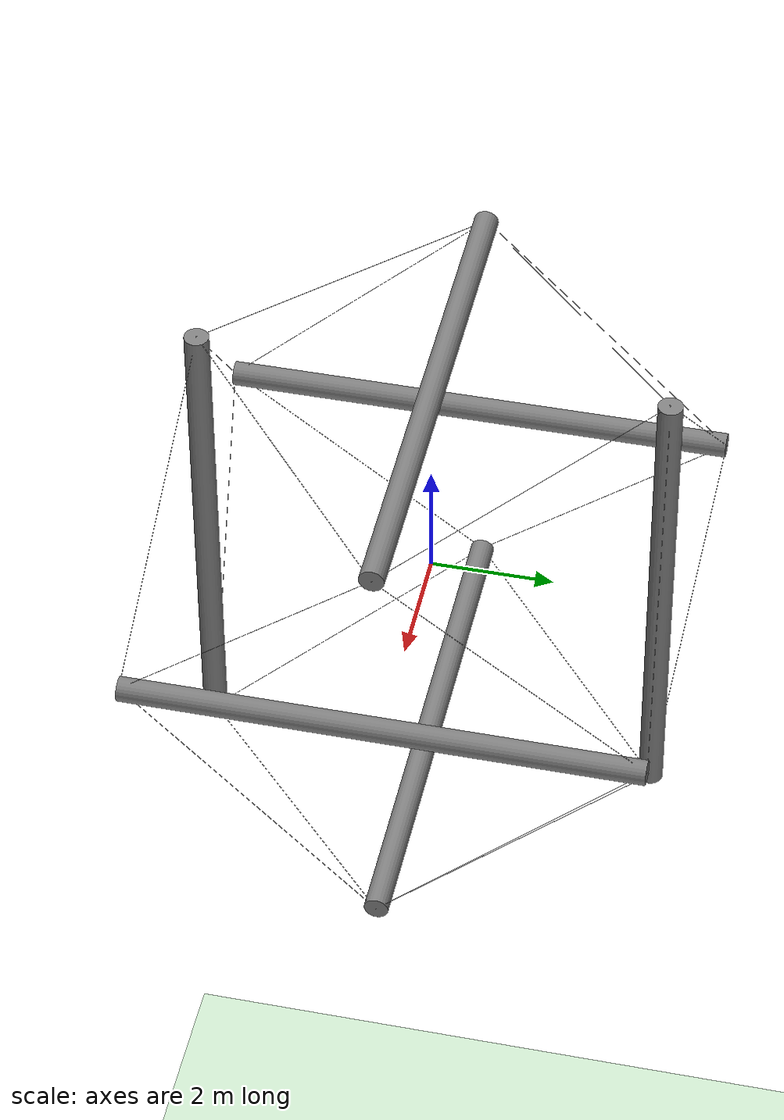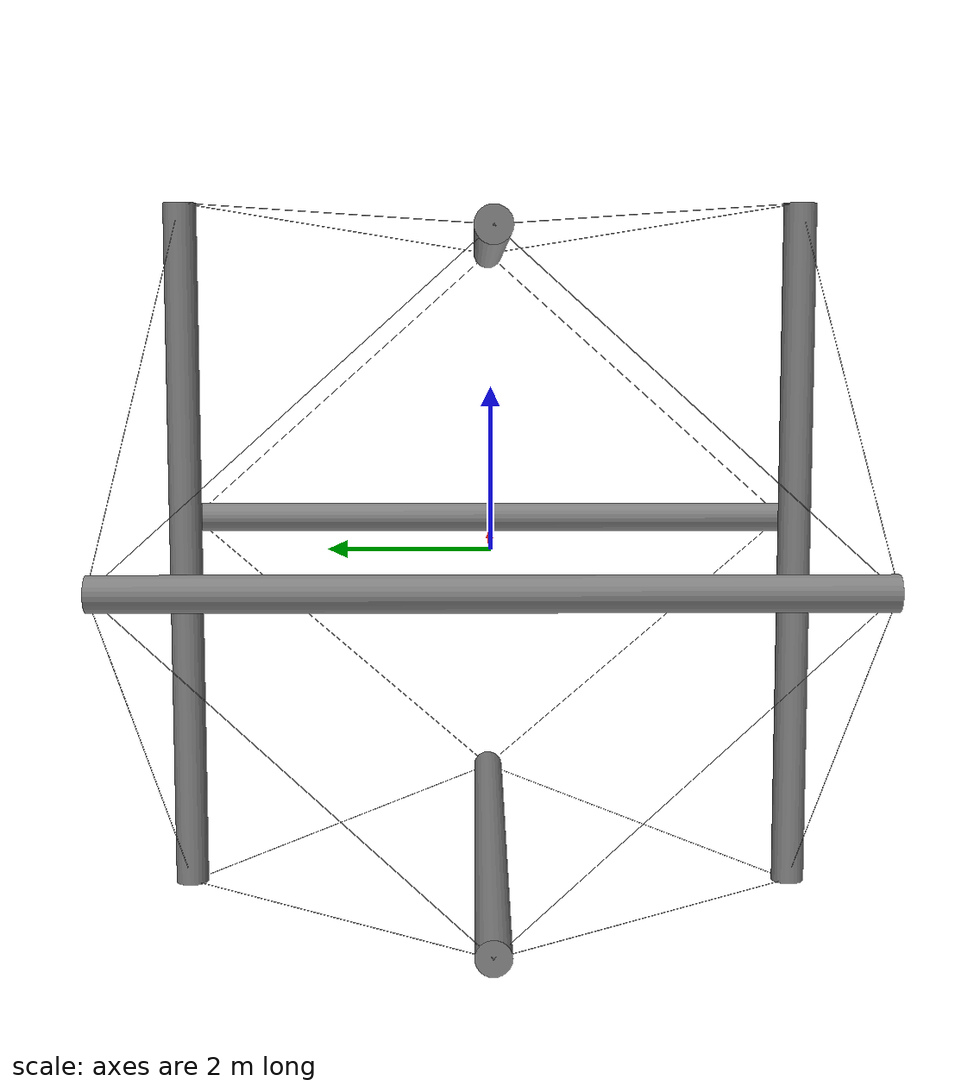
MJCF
<mujoco model="TT (v1.31)">
    <compiler angle="degree" coordinate="global" inertiafromgeom="true">
             <lengthrange timestep="0.001"/>
    </compiler>

    <option timestep="0.001"
            gravity="0 0 -9.81"
            solver="Newton"
            integrator="Euler"
            iterations="100">
         <flag sensornoise="disable"
              warmstart="disable"
            frictionloss="disable"/>
    </option>

    <visual>
        <global offwidth="1024" offheight="768"/>
    </visual>

    <default class='tt'>
        <geom conaffinity="1" condim="1" contype="1" material="geom" rgba="1 .84 0 1" size="0.1"
              density="1000" friction="0.000 0.00 0.000" solref="-10000 -10" solimp="0.9 0.95 0.001 0.5 2"/>
        <site type="sphere" size="0.005"/>
        <tendon width="0.01" rgba="1 0 0 1" damping="10" stiffness="100"/>
        <position ctrllimited="true" ctrlrange="-100 100"/>
    </default>

    <asset>
        <texture name='a' builtin="gradient" height="100" rgb1="1 1 1" rgb2="0 0 0" type="skybox"
                 width="100"/>
        <texture builtin="flat" height="1278" mark="cross" markrgb="1 1 1" name="texgeom"
                 random="0.01" rgb1="0.8 0.6 0.4" rgb2="0.8 0.6 0.4" type="cube" width="127"/>
        <texture builtin="checker" height="100" name="texplane" rgb1="0 0 0" rgb2="0.8 0.8 0.8"
                 type="2d" width="100"/>
        <material name="MatPlane" reflectance="0.5" shininess="1" specular="1" texrepeat="30 30"
                  texture="texplane"/>
        <material name="geom" texture="texgeom" texuniform="true"/>
    </asset>

    <worldbody>

        <light name='mylight' cutoff="100" diffuse="1 1 1" dir="-0 0 -1.3" directional="true" exponent="1"
               pos="0 0 1.3" specular=".1 .1 .1"/>
        <geom conaffinity="1" condim="3" material="MatPlane" name="floor" pos="0 0 -20"
              rgba="0.8 0.9 0.8 1" size="40 40 0.1" type="plane"/>

        <!-- ======= RODS ======= -->
        <body name="r01">
            <geom name="r01"
                  fromto="0 -3.75 -4.21   0 -3.75 4.21"
                  type="cylinder"
                  size="0.2"
                  mass="10"/>
            <freejoint name="move0_1"/>

            <site name="s0" pos="0 -3.75 -4.21" rgba="0 0 0 1" size="0.01"/>
            <site name="s1" pos="0 -3.75 4.21" rgba="0 0 0 1" size="0.01"/>
        </body>

        <body name="r23">
            <geom name="r23"
                  fromto="4.21 0 3.75    -4.21 0 3.75"
                  type="cylinder"
                  size="0.2"
                  mass="10"/>

            <site name="s2" pos="4.21 0 3.75" rgba="0 0 0 1" size="0.01"/>
            <site name="s3" pos="-4.21 0 3.75" rgba="0 0 0 1" size="0.01"/>
        </body>

        <body name="r45">
            <geom name="r45"
                  fromto="3.75 -4.21 0   3.75 4.21 0"
                  type="cylinder"
                  size="0.2"
                  mass="10"/>
            <freejoint name="move4_5"/>

            <site name="s4" pos="3.75 -4.21 0" rgba="0 0 0 1" size="0.01"/>
            <site name="s5" pos="3.75 4.21 0" rgba="0 0 0 1" size="0.01"/>
        </body>

        <body name="r67">
            <geom name="r67"
                  fromto="0 3.75 4.21    0 3.75 -4.21"
                  type="cylinder"
                  size="0.2"
                  mass="10"/>
            <freejoint name="move6_7"/>

            <site name="s6" pos="0 3.75 4.21" rgba="0 0 0 1" size="0.01"/>
            <site name="s7" pos="0 3.75 -4.21" rgba="0 0 0 1" size="0.01"/>
        </body>

        <body name="r89">
            <geom name="r89"
                  fromto="4.21 0 -3.75   -4.21 0 -3.75"
                  type="cylinder"
                  size="0.2"
                  mass="10"/>
            <freejoint name="move8_9"/>

            <site name="s8" pos="4.21 0 -3.75" rgba="0 0 0 1" size="0.01"/>
            <site name="s9" pos="-4.21 0 -3.75" rgba="0 0 0 1" size="0.01"/>
        </body>

        <body name="r1011">
            <geom name="r1011"
                  fromto="-3.75 -4.21 0 -3.75 4.21 0"
                  type="cylinder"
                  size="0.2"
                  mass="10"/>
            <freejoint name="move10_11"/>

            <site name="s10" pos="-3.75 -4.21 0" rgba="0 0 0 1" size="0.01"/>
            <site name="s11" pos="-3.75 4.21 0" rgba="0 0 0 1" size="0.01"/>
        </body>
    </worldbody>

    <!-- TENDONS -->

    <sensor>
        <framepos name="pos_s0" objname="s0" objtype="site"/>
        <framelinvel name="linvel_s0" objname="s0" objtype="site"/>
        <framelinacc name="linacc_s0" objname="s0" objtype="site"/>
        <framepos name="pos_s1" objname="s1" objtype="site"/>
        <framelinvel name="linvel_s1" objname="s1" objtype="site"/>
        <framelinacc name="linacc_s1" objname="s1" objtype="site"/>
        <framepos name="pos_s2" objname="s2" objtype="site"/>
        <framelinvel name="linvel_s2" objname="s2" objtype="site"/>
        <framelinacc name="linacc_s2" objname="s2" objtype="site"/>
        <framepos name="pos_s3" objname="s3" objtype="site"/>
        <framelinvel name="linvel_s3" objname="s3" objtype="site"/>
        <framelinacc name="linacc_s3" objname="s3" objtype="site"/>
        <framepos name="pos_s4" objname="s4" objtype="site"/>
        <framelinvel name="linvel_s4" objname="s4" objtype="site"/>
        <framelinacc name="linacc_s4" objname="s4" objtype="site"/>
        <framepos name="pos_s5" objname="s5" objtype="site"/>
        <framelinvel name="linvel_s5" objname="s5" objtype="site"/>
        <framelinacc name="linacc_s5" objname="s5" objtype="site"/>
        <framepos name="pos_s6" objname="s6" objtype="site"/>
        <framelinvel name="linvel_s6" objname="s6" objtype="site"/>
        <framelinacc name="linacc_s6" objname="s6" objtype="site"/>
        <framepos name="pos_s7" objname="s7" objtype="site"/>
        <framelinvel name="linvel_s7" objname="s7" objtype="site"/>
        <framelinacc name="linacc_s7" objname="s7" objtype="site"/>
        <framepos name="pos_s8" objname="s8" objtype="site"/>
        <framelinvel name="linvel_s8" objname="s8" objtype="site"/>
        <framelinacc name="linacc_s8" objname="s8" objtype="site"/>
        <framepos name="pos_s9" objname="s9" objtype="site"/>
        <framelinvel name="linvel_s9" objname="s9" objtype="site"/>
        <framelinacc name="linacc_s9" objname="s9" objtype="site"/>
        <framepos name="pos_s10" objname="s10" objtype="site"/>
        <framelinvel name="linvel_s10" objname="s10" objtype="site"/>
        <framelinacc name="linacc_s10" objname="s10" objtype="site"/>
        <framepos name="pos_s11" objname="s11" objtype="site"/>
        <framelinvel name="linvel_s11" objname="s11" objtype="site"/>
        <framelinacc name="linacc_s11" objname="s11" objtype="site"/>

        <framelinacc name="linacc_r01" objname="r01" objtype="body"/>
        <frameangacc name="angacc_r01" objname="r01" objtype="body"/>
        <framepos name="pos_r01" objname="r01" objtype="body"/>
        <framelinvel name="linvel_r01" objname="r01" objtype="body"/>
        <frameangvel name="angvel_r01" objname="r01" objtype="body"/>
        <framequat name="quat_r01" objname="r01" objtype="body"/>

        <framelinacc name="linacc_r23" objname="r23" objtype="body"/>
        <frameangacc name="angacc_r23" objname="r23" objtype="body"/>
        <framepos name="pos_r23" objname="r23" objtype="body"/>
        <framelinvel name="linvel_r23" objname="r23" objtype="body"/>
        <frameangvel name="angvel_r23" objname="r23" objtype="body"/>
        <framequat name="quat_r23" objname="r23" objtype="body"/>

        <framelinacc name="linacc_r45" objname="r45" objtype="body"/>
        <frameangacc name="angacc_r45" objname="r45" objtype="body"/>
        <framepos name="pos_r45" objname="r45" objtype="body"/>
        <framelinvel name="linvel_r45" objname="r45" objtype="body"/>
        <frameangvel name="angvel_r45" objname="r45" objtype="body"/>
        <framequat name="quat_r45" objname="r45" objtype="body"/>

        <framelinacc name="linacc_r67" objname="r67" objtype="body"/>
        <frameangacc name="angacc_r67" objname="r67" objtype="body"/>
        <framepos name="pos_r67" objname="r67" objtype="body"/>
        <framelinvel name="linvel_r67" objname="r67" objtype="body"/>
        <frameangvel name="angvel_r67" objname="r67" objtype="body"/>
        <framequat name="quat_r67" objname="r67" objtype="body"/>

        <framelinacc name="linacc_r89" objname="r89" objtype="body"/>
        <frameangacc name="angacc_r89" objname="r89" objtype="body"/>
        <framepos name="pos_r89" objname="r89" objtype="body"/>
        <framelinvel name="linvel_r89" objname="r89" objtype="body"/>
        <frameangvel name="angvel_r89" objname="r89" objtype="body"/>
        <framequat name="quat_r89" objname="r89" objtype="body"/>

        <framelinacc name="linacc_r1011" objname="r1011" objtype="body"/>
        <frameangacc name="angacc_r1011" objname="r1011" objtype="body"/>
        <framepos name="pos_r1011" objname="r1011" objtype="body"/>
        <framelinvel name="linvel_r1011" objname="r1011" objtype="body"/>
        <frameangvel name="angvel_r1011" objname="r1011" objtype="body"/>
        <framequat name="quat_r1011" objname="r1011" objtype="body"/>
    </sensor>

    <tendon>
        <spatial name="td_0">
            <site site="s0"/>
            <site site="s10"/>
        </spatial>
        <spatial name="td_1">
            <site site="s1"/>
            <site site="s4"/>
        </spatial>
        <spatial name="td_2">
            <site site="s2"/>
            <site site="s6"/>
        </spatial>
        <spatial name="td_3">
            <site site="s3"/>
            <site site="s1"/>
        </spatial>
        <spatial name="td_4">
            <site site="s4"/>
            <site site="s8"/>
        </spatial>
        <spatial name="td_5">
            <site site="s5"/>
            <site site="s2"/>
        </spatial>
        <spatial name="td_6">
            <site site="s6"/>
            <site site="s5"/>
        </spatial>
        <spatial name="td_7">
            <site site="s7"/>
            <site site="s11"/>
        </spatial>
        <spatial name="td_8">
            <site site="s8"/>
            <site site="s7"/>
        </spatial>
        <spatial name="td_9">
            <site site="s9"/>
            <site site="s0"/>
        </spatial>
        <spatial name="td_10">
            <site site="s10"/>
            <site site="s9"/>
        </spatial>
        <spatial name="td_11">
            <site site="s11"/>
            <site site="s3"/>
        </spatial>
        <spatial name="td_12">
            <site site="s0"/>
            <site site="s8"/>
        </spatial>
        <spatial name="td_13">
            <site site="s0"/>
            <site site="s4"/>
        </spatial>
        <spatial name="td_14">
            <site site="s10"/>
            <site site="s1"/>
        </spatial>
        <spatial name="td_15">
            <site site="s10"/>
            <site site="s3"/>
        </spatial>
        <spatial name="td_16">
            <site site="s9"/>
            <site site="s11"/>
        </spatial>
        <spatial name="td_17">
            <site site="s9"/>
            <site site="s7"/>
        </spatial>
        <spatial name="td_18">
            <site site="s2"/>
            <site site="s4"/>
        </spatial>
        <spatial name="td_19">
            <site site="s2"/>
            <site site="s1"/>
        </spatial>
        <spatial name="td_20">
            <site site="s6"/>
            <site site="s3"/>
        </spatial>
        <spatial name="td_21">
            <site site="s6"/>
            <site site="s11"/>
        </spatial>
        <spatial name="td_22">
            <site site="s5"/>
            <site site="s7"/>
        </spatial>
        <spatial name="td_23">
            <site site="s5"/>
            <site site="s8"/>
        </spatial>
    </tendon>

    <!-- ACTUATION -->

    <actuator>
        <general name="f0" gear="0 0 1 0 0 0" joint="move0_1"/>
        <general name="f2" gear="0 0 1 0 0 0" joint="move4_5"/>
        <general name="f3" gear="0 0 1 0 0 0" joint="move6_7"/>
        <general name="f4" gear="0 0 1 0 0 0" joint="move8_9"/>
        <general name="f5" gear="0 0 1 0 0 0" joint="move10_11"/>
    </actuator>
</mujoco>
